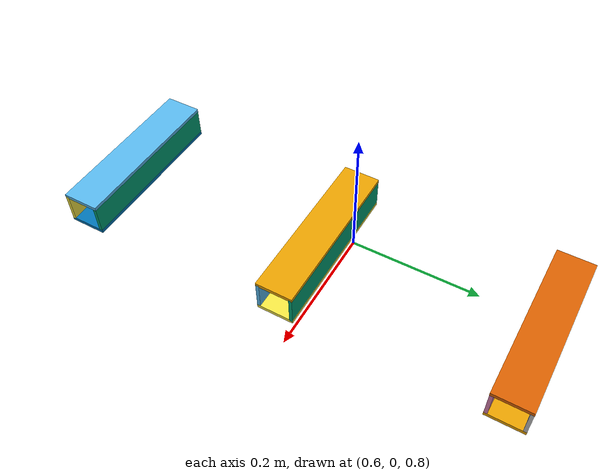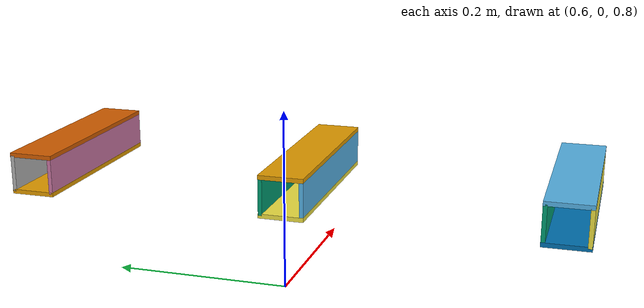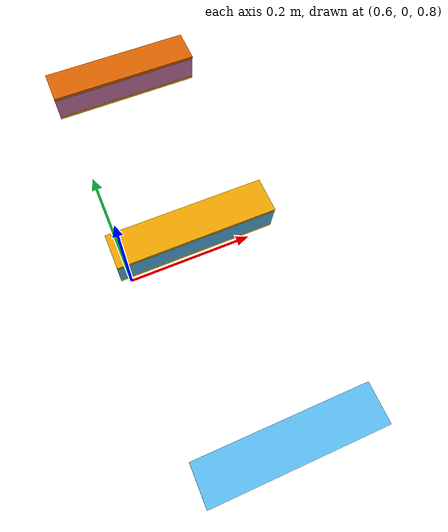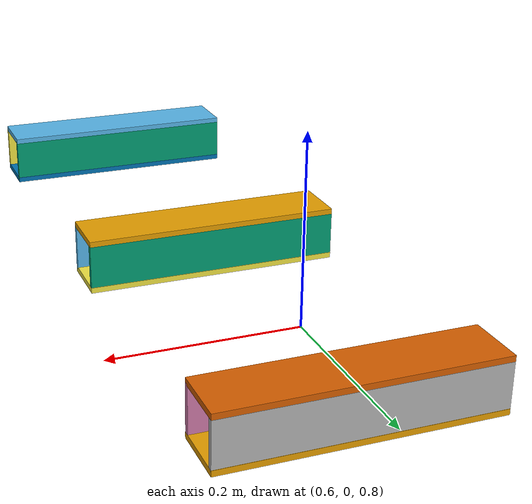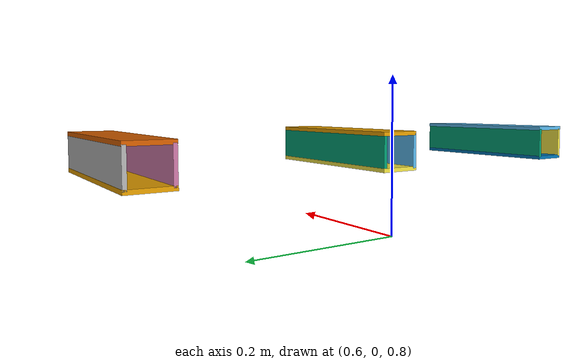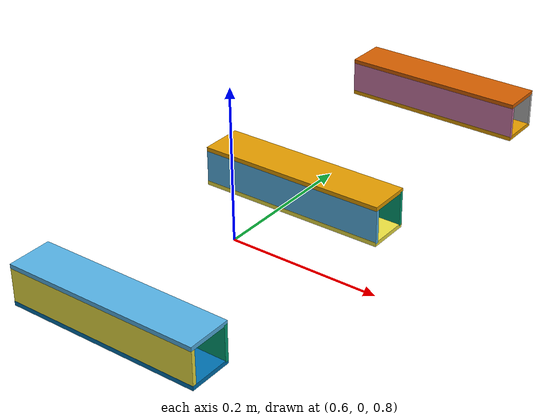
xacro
<?xml version="1.0" ?>
<!-- |    This document was autogenerated by xacro from ur5_joint_limited_robot.urdf.xacro | -->
<!-- |    EDITING THIS FILE BY HAND IS NOT RECOMMENDED                                 | -->

<robot name="simpleTube">

<link name="base_plate">
    <inertial>
      <origin xyz="0.7 0 0.929"/>
      <mass value="5" />
      <inertia  ixx="0.0" ixy="0.0"  ixz="0.0"  iyy="100.0"  iyz="0.0"  izz="1.0" />
    </inertial>
    <visual>
      <origin xyz="0.7 0 0.929" />
      <geometry>
       <box size="0.23 0.0513  0.005" />
      </geometry>
    </visual>
    <collision>
      <origin  xyz="0.7 0 0.929" />
      <geometry>
        <box size="0.23 0.0513  0.005" />
      </geometry>
    </collision>
  </link>

  <link name="left_plate">
    <inertial>
      <origin  xyz="0.7 -0.02321 0.907"  />
      <mass value="5" />
      <inertia  ixx="0.0" ixy="0.0"  ixz="0.0"  iyy="100.0"  iyz="0.0"  izz="1.0" />
    </inertial>
    <visual>
      <origin  xyz="0.7 -0.02321 0.907"   />
      <geometry>
       <box size="0.23 0.0045 0.042" />
      </geometry>
    </visual>
    <collision>
      <origin   xyz="0.7 -0.02321 0.907"  />
      <geometry>
        <box size="0.23 0.0045 0.042" />
      </geometry>
    </collision>
  </link>

  <link name="right_plate">
    <inertial>
      <origin  xyz="0.7 0.02321 0.907" />
      <mass value="5" />
      <inertia  ixx="0.0" ixy="0.0"  ixz="0.0"  iyy="100.0"  iyz="0.0"  izz="1.0" />
    </inertial>
    <visual>
      <origin  xyz="0.7 0.02321 0.907"  />
      <geometry>
       <box size="0.23 0.0045 0.042" />
      </geometry>
    </visual>
    <collision>
      <origin  xyz="0.7 0.02321 0.907" />
      <geometry>
        <box size="0.23 0.0045 0.042" />
      </geometry>
    </collision>
  </link>

 <link name="upper_plate">
    <inertial>
      <origin xyz="0.7 0 0.8855"/>
      <mass value="5" />
      <inertia  ixx="0.0" ixy="0.0"  ixz="0.0"  iyy="100.0"  iyz="0.0"  izz="1.0" />
    </inertial>
    <visual>
      <origin xyz="0.7 0 0.8855" />
      <geometry>
       <box size="0.23 0.0513  0.005" />
      </geometry>
    </visual>
    <collision>
      <origin  xyz="0.7 0 0.8855" />
      <geometry>
        <box size="0.23 0.0513 0.005" />
      </geometry>
    </collision>
  </link>

  <link name="world"/>

    <joint name ="joint_3" type="fixed">
    <origin xyz="0 0 0 " rpy="0 0 0 "/>
    <parent link="world"/>
    <child link ="base_plate"/>
  </joint>
    <joint name ="joint_5" type="fixed">
    <origin xyz="0 0 0 " rpy="0 0 0 "/>
    <parent link="base_plate"/>
    <child link ="left_plate"/>
  </joint>
      <joint name ="joint_4" type="fixed">
    <origin xyz="0 0 0 " rpy="0 0 0 "/>
    <parent link="left_plate"/>
    <child link ="right_plate"/>
  </joint>

    <joint name ="joint_6" type="fixed">
    <origin xyz="0 0 0 " rpy="0 0 0 "/>
    <parent link="right_plate"/>
    <child link ="upper_plate"/>
  </joint>

<link name="base_plate2">
    <inertial>
      <origin xyz="0.7 0.3 0.929"/>
      <mass value="0.5" />
      <inertia  ixx="0.0" ixy="0.0"  ixz="0.0"  iyy="100.0"  iyz="0.0"  izz="1.0" />
    </inertial>
    <visual>
      <origin xyz="0.7 0.3 0.929" />
      <geometry>
       <box size="0.23 0.0513  0.005" />
      </geometry>
    </visual>
    <collision>
      <origin  xyz="0.7 0.3 0.929" />
      <geometry>
        <box size="0.23 0.0513  0.005" />
      </geometry>
    </collision>
  </link>

  <link name="left_plate2">
    <inertial>
      <origin  xyz="0.7 0.27679 0.907"  />
      <mass value="5" />
      <inertia  ixx="0.0" ixy="0.0"  ixz="0.0"  iyy="100.0"  iyz="0.0"  izz="1.0" />
    </inertial>
    <visual>
      <origin  xyz="0.7 0.27679 0.907"   />
      <geometry>
       <box size="0.23 0.0045 0.042" />
      </geometry>
    </visual>
    <collision>
      <origin   xyz="0.7 0.27679 0.907"  />
      <geometry>
        <box size="0.23 0.0045 0.042" />
      </geometry>
    </collision>
  </link>

  <link name="right_plate2">
    <inertial>
      <origin  xyz="0.7 0.32321 0.907" />
      <mass value="5" />
      <inertia  ixx="0.0" ixy="0.0"  ixz="0.0"  iyy="100.0"  iyz="0.0"  izz="1.0" />
    </inertial>
    <visual>
      <origin  xyz="0.7 0.32321 0.907"  />
      <geometry>
       <box size="0.23 0.0045 0.042" />
      </geometry>
    </visual>
    <collision>
      <origin  xyz="0.7 0.32321 0.907" />
      <geometry>
        <box size="0.23 0.0045 0.042" />
      </geometry>
    </collision>
  </link>

 <link name="upper_plate2">
    <inertial>
      <origin xyz="0.7 0.3 0.8855"/>
      <mass value="5" />
      <inertia  ixx="0.0" ixy="0.0"  ixz="0.0"  iyy="100.0"  iyz="0.0"  izz="1.0" />
    </inertial>
    <visual>
      <origin xyz="0.7 0.3 0.8855" />
      <geometry>
       <box size="0.23 0.0513  0.005" />
      </geometry>
    </visual>
    <collision>
      <origin  xyz="0.7 0.3 0.8855" />
      <geometry>
        <box size="0.23 0.0513 0.005" />
      </geometry>
    </collision>
  </link>

    <joint name ="joint_01" type="fixed">
    <origin xyz="0 0 0 " rpy="0 0 0 "/>
    <parent link="world"/>
    <child link ="base_plate2"/>
  </joint>
    <joint name ="joint_02" type="fixed">
    <origin xyz="0 0 0 " rpy="0 0 0 "/>
    <parent link="base_plate2"/>
    <child link ="left_plate2"/>
  </joint>
      <joint name ="joint_03" type="fixed">
    <origin xyz="0 0 0 " rpy="0 0 0 "/>
    <parent link="left_plate2"/>
    <child link ="right_plate2"/>
  </joint>

    <joint name ="joint_04" type="fixed">
    <origin xyz="0 0 0 " rpy="0 0 0 "/>
    <parent link="right_plate2"/>
    <child link ="upper_plate2"/>
  </joint>

  <link name="base_plate3">
    <inertial>
      <origin xyz="0.7 -0.3 0.929"/>
      <mass value="5" />
      <inertia  ixx="0.0" ixy="0.0"  ixz="0.0"  iyy="100.0"  iyz="0.0"  izz="1.0" />
    </inertial>
    <visual>
      <origin xyz="0.7 -0.3 0.929" />
      <geometry>
       <box size="0.23 0.0513  0.005" />
      </geometry>
    </visual>
    <collision>
      <origin  xyz="0.7 -0.3 0.929" />
      <geometry>
        <box size="0.23 0.0513  0.005" />
      </geometry>
    </collision>
  </link>

  <link name="left_plate3">
    <inertial>
      <origin  xyz="0.7 -0.27679 0.907"  />
      <mass value="5" />
      <inertia  ixx="0.0" ixy="0.0"  ixz="0.0"  iyy="100.0"  iyz="0.0"  izz="1.0" />
    </inertial>
    <visual>
      <origin  xyz="0.7 -0.27679 0.907"   />
      <geometry>
       <box size="0.23 0.0045 0.042" />
      </geometry>
    </visual>
    <collision>
      <origin   xyz="0.7 -0.27679 0.907"  />
      <geometry>
        <box size="0.23 0.0045 0.042" />
      </geometry>
    </collision>
  </link>

  <link name="right_plate3">
    <inertial>
      <origin  xyz="0.7 -0.32321 0.907" />
      <mass value="5" />
      <inertia  ixx="0.0" ixy="0.0"  ixz="0.0"  iyy="100.0"  iyz="0.0"  izz="1.0" />
    </inertial>
    <visual>
      <origin  xyz="0.7 -0.32321 0.907"  />
      <geometry>
       <box size="0.23 -0.0045 0.042" />
      </geometry>
    </visual>
    <collision>
      <origin  xyz="0.7 -0.32321 0.907" />
      <geometry>
        <box size="0.23 0.0045 0.042" />
      </geometry>
    </collision>
  </link>

 <link name="upper_plate3">
    <inertial>
      <origin xyz="0.7 -0.3 0.8855"/>
      <mass value="5" />
      <inertia  ixx="0.0" ixy="0.0"  ixz="0.0"  iyy="100.0"  iyz="0.0"  izz="1.0" />
    </inertial>
    <visual>
      <origin xyz="0.7 -0.3 0.8855" />
      <geometry>
       <box size="0.23 -0.0513  0.005" />
      </geometry>
    </visual>
    <collision>
      <origin  xyz="0.7 -0.3 0.8855" />
      <geometry>
        <box size="0.23 0.0513 0.005" />
      </geometry>
    </collision>
  </link>

    <joint name ="joint_001" type="fixed">
    <origin xyz="0 0 0 " rpy="0 0 0 "/>
    <parent link="world"/>
    <child link ="base_plate3"/>
  </joint>
    <joint name ="joint_002" type="fixed">
    <origin xyz="0 0 0 " rpy="0 0 0 "/>
    <parent link="base_plate3"/>
    <child link ="left_plate3"/>
  </joint>
      <joint name ="joint_003" type="fixed">
    <origin xyz="0 0 0 " rpy="0 0 0 "/>
    <parent link="left_plate3"/>
    <child link ="right_plate3"/>
  </joint>

    <joint name ="joint_004" type="fixed">
    <origin xyz="0 0 0 " rpy="0 0 0 "/>
    <parent link="right_plate3"/>
    <child link ="upper_plate3"/>
  </joint>

</robot>
